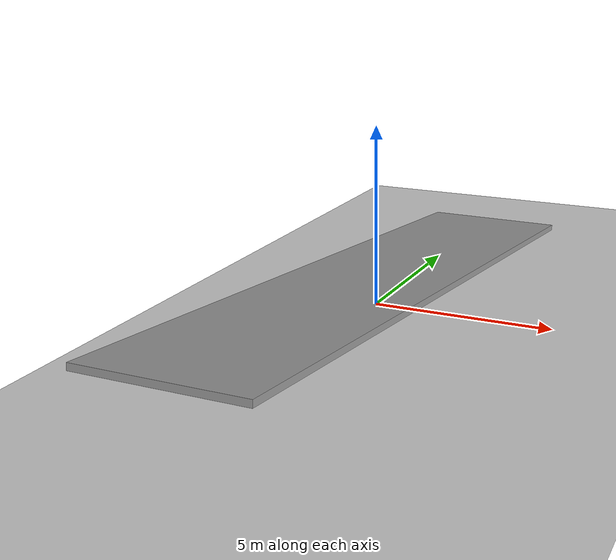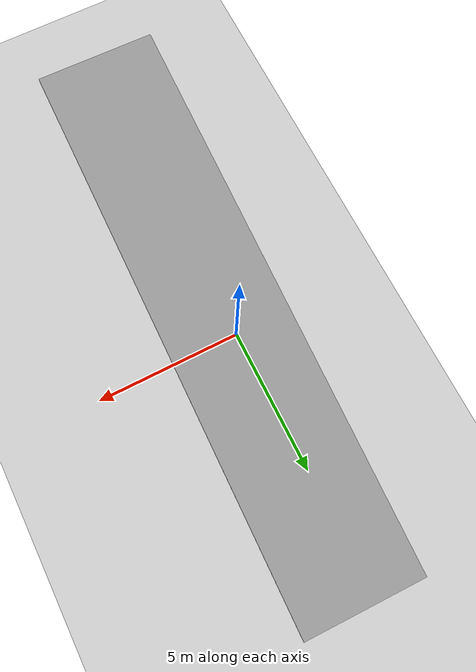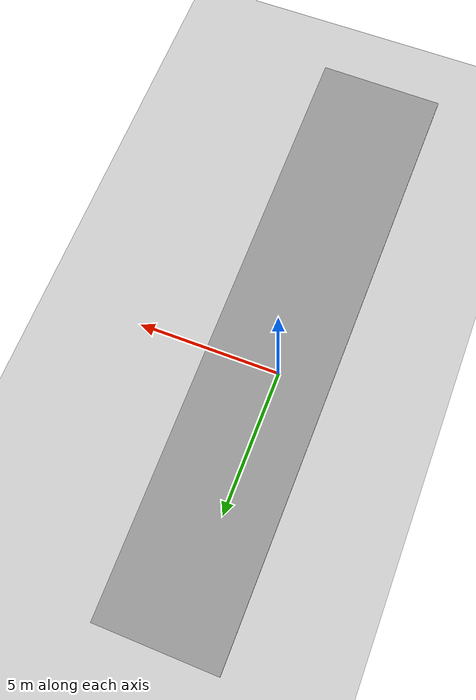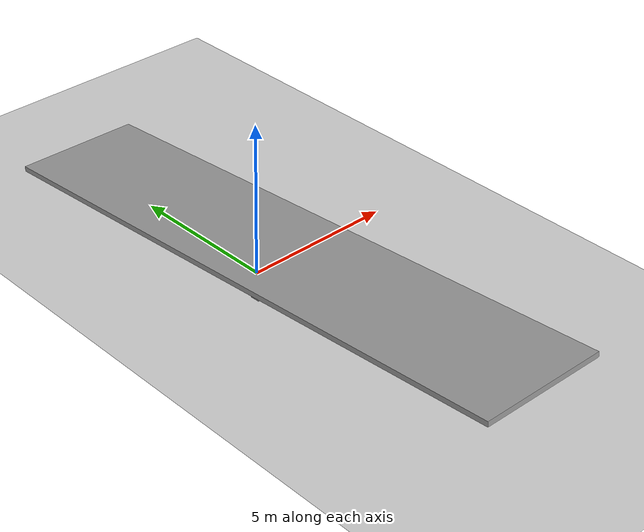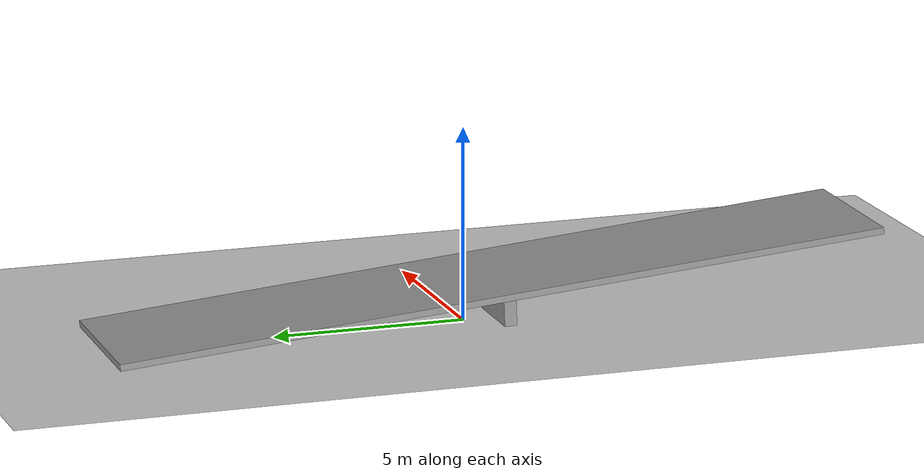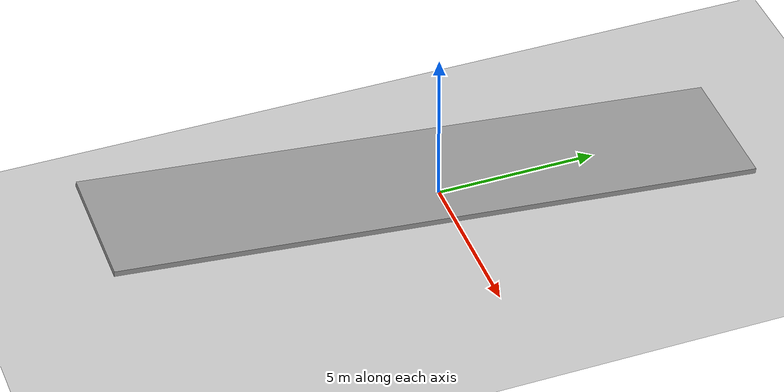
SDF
<sdf version="1.6">
 <world name="default">
  <light name="sun" type="directional">
   <pose>0 0 10 0 -0 0</pose>
   <diffuse>0.8 0.8 0.8 1</diffuse>
   <specular>0.2 0.2 0.2 1</specular>
   <attenuation>
    <range>1000</range>
    <constant>0.9</constant>
    <linear>0.01</linear>
    <quadratic>0.001</quadratic>
   </attenuation>
   <direction>-0.5 0.1 -0.9</direction>
  </light>
  <model name="ground_plane">
   <static>1</static>
   <link name="link">
    <collision name="collision">
     <geometry><plane><normal>0 0 1</normal><size>100 100</size></plane></geometry>
     <surface>
      <contact><collide_bitmask>65535</collide_bitmask></contact>
      <friction><ode><mu>100</mu><mu2>50</mu2></ode></friction>
     </surface>
    </collision>
    <visual name="visual">
     <cast_shadows>0</cast_shadows>
     <geometry><plane><normal>0 0 1</normal><size>100 100</size></plane></geometry>
     <material>
      <script><uri>file://media/materials/scripts/gazebo.material</uri><name>Gazebo/Grey</name></script>
     </material>
    </visual>
   </link>
  </model>
  <gravity>0 0 -9.8</gravity>
  <magnetic_field>6e-06 2.3e-05 -4.2e-05</magnetic_field>
  <atmosphere type="adiabatic"/>
  <physics name="default_physics" default="0" type="ode">
   <max_step_size>0.001</max_step_size>
   <real_time_factor>1</real_time_factor>
   <real_time_update_rate>1000</real_time_update_rate>
  </physics>
  <scene><ambient>0.4 0.4 0.4 1</ambient><background>0.7 0.7 0.7 1</background><shadows>1</shadows></scene>
  <spherical_coordinates>
   <surface_model>EARTH_WGS84</surface_model>
   <latitude_deg>0</latitude_deg>
   <longitude_deg>0</longitude_deg>
   <elevation>0</elevation>
   <heading_deg>0</heading_deg>
  </spherical_coordinates>
  <model name="ramp_walker">
   <link name="link_1">
    <pose>0.185365 -0.902231 -4e-06 1e-05 -0 0</pose>
    <inertial>
     <mass>0.611958</mass>
     <inertia>
      <ixx>0.0563702</ixx>
      <ixy>0</ixy>
      <ixz>0</ixz>
      <iyy>0.232245</iyy>
      <iyz>0</iyz>
      <izz>0.186622</izz>
     </inertia>
    </inertial>
    <visual name="visual">
     <geometry><box><size>1.88524 0.324613 1</size></box></geometry>
     <material>
      <lighting>1</lighting>
      <script><uri>file://media/materials/scripts/gazebo.material</uri><name>Gazebo/Grey</name></script>
      <shader type="pixel"><normal_map>__default__</normal_map></shader>
      <ambient>0.3 0.3 0.3 1</ambient>
      <diffuse>0.7 0.7 0.7 1</diffuse>
      <specular>0.01 0.01 0.01 1</specular>
      <emissive>0 0 0 1</emissive>
     </material>
    </visual>
    <collision name="collision">
     <geometry><box><size>1.88524 0.324613 1</size></box></geometry>
     <surface>
      <friction>
       <ode><mu>1</mu><mu2>1</mu2><fdir1>0 0 0</fdir1><slip1>0</slip1><slip2>0</slip2></ode>
       <torsional>
        <coefficient>1</coefficient>
        <patch_radius>0</patch_radius>
        <surface_radius>0</surface_radius>
        <use_patch_radius>1</use_patch_radius>
        <ode><slip>0</slip></ode>
       </torsional>
      </friction>
      <bounce><restitution_coefficient>0</restitution_coefficient><threshold>1e+06</threshold></bounce>
      <contact>
       <collide_without_contact>0</collide_without_contact>
       <collide_without_contact_bitmask>1</collide_without_contact_bitmask>
       <collide_bitmask>1</collide_bitmask>
       <ode>
        <soft_cfm>0</soft_cfm>
        <soft_erp>0.2</soft_erp>
        <kp>1e+13</kp>
        <kd>1</kd>
        <max_vel>0.01</max_vel>
        <min_depth>0</min_depth>
       </ode>
       <bullet>
        <split_impulse>1</split_impulse>
        <split_impulse_penetration_threshold>-0.01</split_impulse_penetration_threshold>
        <soft_cfm>0</soft_cfm>
        <soft_erp>0.2</soft_erp>
        <kp>1e+13</kp>
        <kd>1</kd>
       </bullet>
      </contact>
     </surface>
    </collision>
   </link>
   <link name="link_2">
    <pose>-0.066712 -1.18151 0.5076 0.053866 -0 0</pose>
    <inertial>
     <mass>26.9358</mass>
     <inertia><ixx>909.19</ixx><ixy>0</ixy><ixz>0</ixz><iyy>39.6329</iyy><iyz>0</iyz><izz>948.69</izz></inertia>
    </inertial>
    <visual name="visual">
     <geometry><box><size>4.19845 20.1251 0.172308</size></box></geometry>
     <material>
      <lighting>1</lighting>
      <script><uri>file://media/materials/scripts/gazebo.material</uri><name>Gazebo/Grey</name></script>
      <shader type="pixel"><normal_map>__default__</normal_map></shader>
      <ambient>0.3 0.3 0.3 1</ambient>
      <diffuse>0.7 0.7 0.7 1</diffuse>
      <specular>0.01 0.01 0.01 1</specular>
      <emissive>0 0 0 1</emissive>
     </material>
    </visual>
    <collision name="collision">
     <geometry><box><size>4.19845 20.1251 0.172308</size></box></geometry>
     <surface>
      <friction>
       <ode><mu>1</mu><mu2>1</mu2><fdir1>0 0 0</fdir1><slip1>0</slip1><slip2>0</slip2></ode>
       <torsional>
        <coefficient>1</coefficient>
        <patch_radius>0</patch_radius>
        <surface_radius>0</surface_radius>
        <use_patch_radius>1</use_patch_radius>
        <ode><slip>0</slip></ode>
       </torsional>
      </friction>
      <bounce><restitution_coefficient>0</restitution_coefficient><threshold>1e+06</threshold></bounce>
      <contact>
       <collide_without_contact>0</collide_without_contact>
       <collide_without_contact_bitmask>1</collide_without_contact_bitmask>
       <collide_bitmask>1</collide_bitmask>
       <ode>
        <soft_cfm>0</soft_cfm>
        <soft_erp>0.2</soft_erp>
        <kp>1e+13</kp>
        <kd>1</kd>
        <max_vel>0.01</max_vel>
        <min_depth>0</min_depth>
       </ode>
       <bullet>
        <split_impulse>1</split_impulse>
        <split_impulse_penetration_threshold>-0.01</split_impulse_penetration_threshold>
        <soft_cfm>0</soft_cfm>
        <soft_erp>0.2</soft_erp>
        <kp>1e+13</kp>
        <kd>1</kd>
       </bullet>
      </contact>
     </surface>
    </collision>
   </link>
   <joint name="link_1_JOINT_0" type="fixed">
    <parent>link_1</parent>
    <child>link_2</child>
    <physics>
     <ode><limit><cfm>0</cfm><erp>0.2</erp></limit><suspension><cfm>0</cfm><erp>0.2</erp></suspension></ode>
    </physics>
   </joint>
   <static>0</static>
   <pose>0.183032 -1.85516 0.539372 0.037312 -0 3.1272</pose>
  </model>
 </world>
</sdf>
